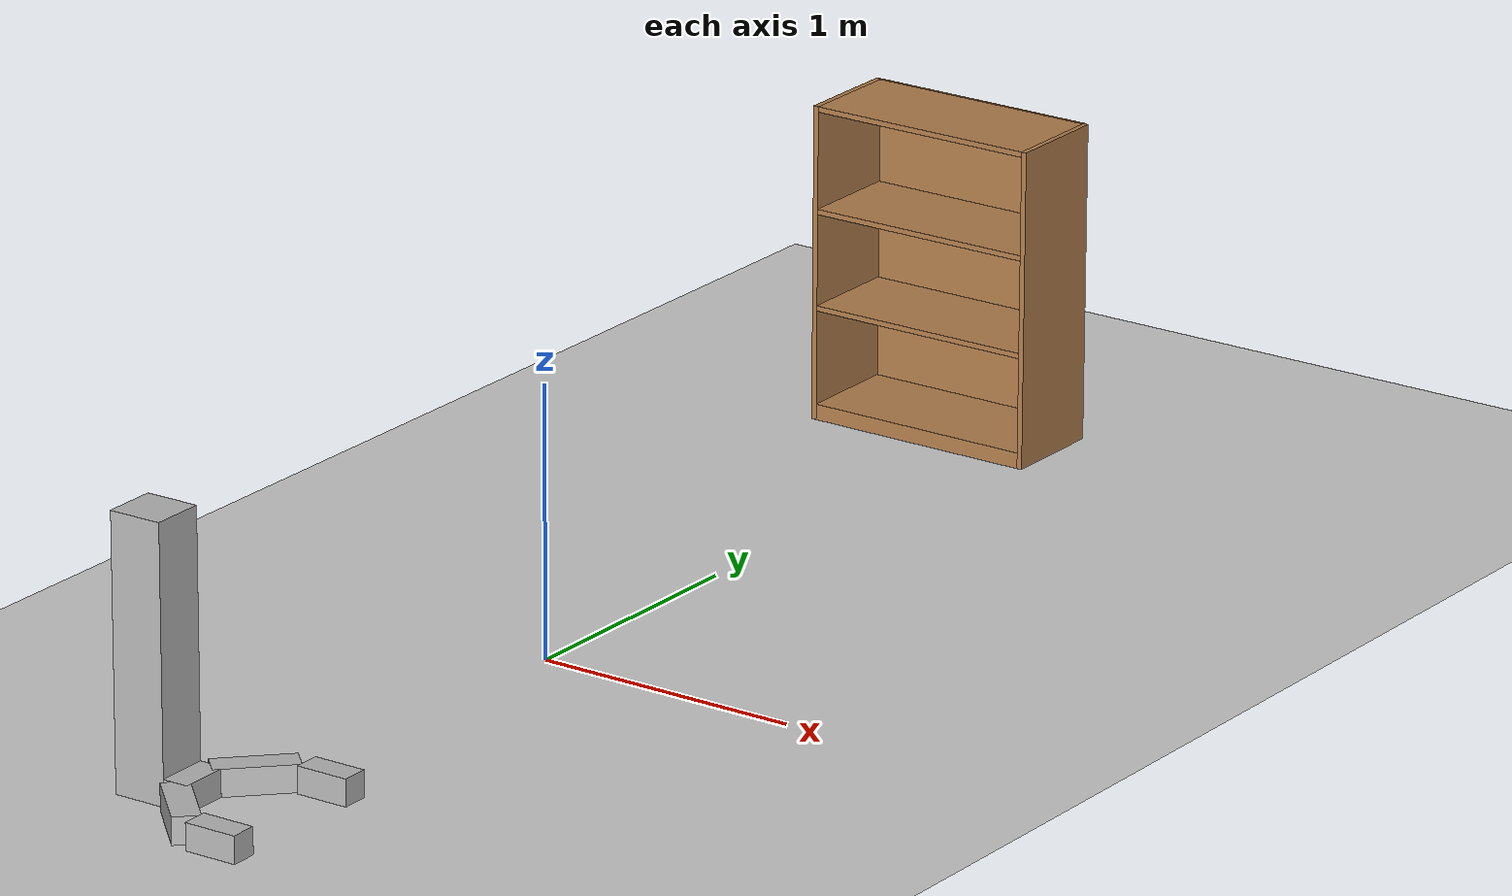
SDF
<sdf version="1.7">
 <world name="default">
  <light name="sun" type="directional">
   <pose>0 0 10 0 -0 0</pose>
   <diffuse>0.8 0.8 0.8 1</diffuse>
   <specular>0.2 0.2 0.2 1</specular>
   <attenuation>
    <range>1000</range>
    <constant>0.9</constant>
    <linear>0.01</linear>
    <quadratic>0.001</quadratic>
   </attenuation>
   <direction>-0.5 0.1 -0.9</direction>
   <spot><inner_angle>0</inner_angle><outer_angle>0</outer_angle><falloff>0</falloff></spot>
  </light>
  <model name="ground_plane">
   <static>1</static>
   <link name="link">
    <collision name="collision">
     <geometry><plane><normal>0 0 1</normal><size>100 100</size></plane></geometry>
     <surface>
      <contact><collide_bitmask>65535</collide_bitmask></contact>
      <friction><ode><mu>100</mu><mu2>50</mu2></ode></friction>
     </surface>
    </collision>
    <visual name="visual">
     <cast_shadows>0</cast_shadows>
     <geometry><plane><normal>0 0 1</normal><size>100 100</size></plane></geometry>
     <material>
      <script><uri>file://media/materials/scripts/gazebo.material</uri><name>Gazebo/Grey</name></script>
     </material>
    </visual>
   </link>
  </model>
  <gravity>0 0 -9.8</gravity>
  <magnetic_field>6e-06 2.3e-05 -4.2e-05</magnetic_field>
  <atmosphere type="adiabatic"/>
  <physics type="ode">
   <max_step_size>0.001</max_step_size>
   <real_time_factor>1</real_time_factor>
   <real_time_update_rate>1000</real_time_update_rate>
  </physics>
  <scene><ambient>0.4 0.4 0.4 1</ambient><background>0.7 0.7 0.7 1</background><shadows>1</shadows></scene>
  <audio><device>default</device></audio>
  <spherical_coordinates>
   <surface_model>EARTH_WGS84</surface_model>
   <latitude_deg>0</latitude_deg>
   <longitude_deg>0</longitude_deg>
   <elevation>0</elevation>
   <heading_deg>0</heading_deg>
  </spherical_coordinates>
  <model name="simple_gripper">
   <link name="riser">
    <pose>-0.15 0 0.5 0 -0 0</pose>
    <inertial>
     <pose>0 0 -0.5 0 -0 0</pose>
     <inertia><ixx>0.01</ixx><ixy>0</ixy><ixz>0</ixz><iyy>0.01</iyy><iyz>0</iyz><izz>0.01</izz></inertia>
     <mass>10</mass>
    </inertial>
    <collision name="collision"><geometry><box><size>0.2 0.2 1</size></box></geometry></collision>
    <visual name="visual">
     <geometry><box><size>0.2 0.2 1</size></box></geometry>
     <material><script><uri>__default__</uri><name>__default__</name></script></material>
    </visual>
   </link>
   <link name="palm">
    <pose>0 0 0.05 0 -0 0</pose>
    <inertial>
     <inertia><ixx>0.01</ixx><ixy>0</ixy><ixz>0</ixz><iyy>0.01</iyy><iyz>0</iyz><izz>0.01</izz></inertia>
     <mass>0.5</mass>
    </inertial>
    <collision name="collision"><geometry><box><size>0.1 0.2 0.1</size></box></geometry></collision>
    <visual name="visual">
     <geometry><box><size>0.1 0.2 0.1</size></box></geometry>
     <material><script><uri>__default__</uri><name>__default__</name></script></material>
    </visual>
   </link>
   <link name="left_finger">
    <pose>0.1 0.2 0.05 0 0 -0.78539</pose>
    <inertial>
     <inertia><ixx>0.01</ixx><ixy>0</ixy><ixz>0</ixz><iyy>0.01</iyy><iyz>0</iyz><izz>0.01</izz></inertia>
     <mass>0.1</mass>
    </inertial>
    <collision name="collision"><geometry><box><size>0.1 0.3 0.1</size></box></geometry></collision>
    <visual name="visual">
     <geometry><box><size>0.1 0.3 0.1</size></box></geometry>
     <material><script><uri>__default__</uri><name>__default__</name></script></material>
    </visual>
   </link>
   <link name="left_finger_tip">
    <pose>0.336 0.3 0.05 0 -0 1.5707</pose>
    <inertial>
     <inertia><ixx>0.01</ixx><ixy>0</ixy><ixz>0</ixz><iyy>0.01</iyy><iyz>0</iyz><izz>0.01</izz></inertia>
     <mass>0.1</mass>
    </inertial>
    <collision name="collision"><geometry><box><size>0.1 0.2 0.1</size></box></geometry></collision>
    <visual name="visual">
     <geometry><box><size>0.1 0.2 0.1</size></box></geometry>
     <material><script><uri>__default__</uri><name>__default__</name></script></material>
    </visual>
   </link>
   <link name="right_finger">
    <pose>0.1 -0.2 0.05 0 -0 0.78539</pose>
    <inertial>
     <inertia><ixx>0.01</ixx><ixy>0</ixy><ixz>0</ixz><iyy>0.01</iyy><iyz>0</iyz><izz>0.01</izz></inertia>
     <mass>0.1</mass>
    </inertial>
    <collision name="collision"><geometry><box><size>0.1 0.3 0.1</size></box></geometry></collision>
    <visual name="visual">
     <geometry><box><size>0.1 0.3 0.1</size></box></geometry>
     <material><script><uri>__default__</uri><name>__default__</name></script></material>
    </visual>
   </link>
   <link name="right_finger_tip">
    <pose>0.336 -0.3 0.05 0 -0 1.5707</pose>
    <inertial>
     <inertia><ixx>0.01</ixx><ixy>0</ixy><ixz>0</ixz><iyy>0.01</iyy><iyz>0</iyz><izz>0.01</izz></inertia>
     <mass>0.1</mass>
    </inertial>
    <collision name="collision"><geometry><box><size>0.1 0.2 0.1</size></box></geometry></collision>
    <visual name="visual">
     <geometry><box><size>0.1 0.2 0.1</size></box></geometry>
     <material><script><uri>__default__</uri><name>__default__</name></script></material>
    </visual>
   </link>
   <joint name="palm_left_finger" type="revolute">
    <pose>0 -0.15 0 0 -0 0</pose>
    <child>left_finger</child>
    <parent>palm</parent>
    <axis>
     <limit><lower>-0.4</lower><upper>0.4</upper></limit>
     <xyz expressed_in="__model__">0 0 1</xyz>
     <dynamics><spring_reference>0</spring_reference><spring_stiffness>0</spring_stiffness></dynamics>
    </axis>
   </joint>
   <joint name="left_finger_tip" type="revolute">
    <pose>0 0.1 0 0 -0 0</pose>
    <child>left_finger_tip</child>
    <parent>left_finger</parent>
    <axis>
     <limit><lower>-0.4</lower><upper>0.4</upper></limit>
     <xyz expressed_in="__model__">0 0 1</xyz>
     <dynamics><spring_reference>0</spring_reference><spring_stiffness>0</spring_stiffness></dynamics>
    </axis>
   </joint>
   <joint name="palm_right_finger" type="revolute">
    <pose>0 0.15 0 0 -0 0</pose>
    <child>right_finger</child>
    <parent>palm</parent>
    <axis>
     <limit><lower>-0.4</lower><upper>0.4</upper></limit>
     <xyz expressed_in="__model__">0 0 1</xyz>
     <dynamics><spring_reference>0</spring_reference><spring_stiffness>0</spring_stiffness></dynamics>
    </axis>
   </joint>
   <joint name="right_finger_tip" type="revolute">
    <pose>0 0.1 0 0 -0 0</pose>
    <child>right_finger_tip</child>
    <parent>right_finger</parent>
    <axis>
     <limit><lower>-0.4</lower><upper>0.4</upper></limit>
     <xyz expressed_in="__model__">0 0 1</xyz>
     <dynamics><spring_reference>0</spring_reference><spring_stiffness>0</spring_stiffness></dynamics>
    </axis>
   </joint>
   <joint name="palm_riser" type="prismatic">
    <child>palm</child>
    <parent>riser</parent>
    <axis>
     <limit><lower>0</lower><upper>0.9</upper></limit>
     <xyz expressed_in="__model__">0 0 1</xyz>
     <dynamics><spring_reference>0</spring_reference><spring_stiffness>0</spring_stiffness></dynamics>
    </axis>
   </joint>
   <static>0</static>
   <pose>-0.184798 -1.70414 -4e-06 -4.2e-05 -0 0.00798</pose>
  </model>
  <model name="bookshelf">
   <static>1</static>
   <link name="link">
    <inertial><mass>1</mass></inertial>
    <collision name="back">
     <pose>0 0.005 0.6 0 -0 0</pose>
     <geometry><box><size>0.9 0.01 1.2</size></box></geometry>
    </collision>
    <visual name="visual1">
     <pose>0 0.005 0.6 0 -0 0</pose>
     <geometry><box><size>0.9 0.01 1.2</size></box></geometry>
     <material>
      <script><uri>file://media/materials/scripts/gazebo.material</uri><name>Gazebo/Wood</name></script>
     </material>
    </visual>
    <collision name="left_side">
     <pose>0.45 -0.195 0.6 0 -0 0</pose>
     <geometry><box><size>0.02 0.4 1.2</size></box></geometry>
    </collision>
    <visual name="visual2">
     <pose>0.45 -0.195 0.6 0 -0 0</pose>
     <geometry><box><size>0.02 0.4 1.2</size></box></geometry>
     <material>
      <script><uri>file://media/materials/scripts/gazebo.material</uri><name>Gazebo/Wood</name></script>
     </material>
    </visual>
    <collision name="right_side">
     <pose>-0.45 -0.195 0.6 0 -0 0</pose>
     <geometry><box><size>0.02 0.4 1.2</size></box></geometry>
    </collision>
    <visual name="visual3">
     <pose>-0.45 -0.195 0.6 0 -0 0</pose>
     <geometry><box><size>0.02 0.4 1.2</size></box></geometry>
     <material>
      <script><uri>file://media/materials/scripts/gazebo.material</uri><name>Gazebo/Wood</name></script>
     </material>
    </visual>
    <collision name="bottom">
     <pose>0 -0.195 0.03 0 -0 0</pose>
     <geometry><box><size>0.88 0.4 0.06</size></box></geometry>
    </collision>
    <visual name="visual4">
     <pose>0 -0.195 0.03 0 -0 0</pose>
     <geometry><box><size>0.88 0.4 0.06</size></box></geometry>
     <material>
      <script><uri>file://media/materials/scripts/gazebo.material</uri><name>Gazebo/Wood</name></script>
     </material>
    </visual>
    <collision name="top">
     <pose>0 -0.195 1.19 0 -0 0</pose>
     <geometry><box><size>0.88 0.4 0.02</size></box></geometry>
    </collision>
    <visual name="visual5">
     <pose>0 -0.195 1.19 0 -0 0</pose>
     <geometry><box><size>0.88 0.4 0.02</size></box></geometry>
     <material>
      <script><uri>file://media/materials/scripts/gazebo.material</uri><name>Gazebo/Wood</name></script>
     </material>
    </visual>
    <collision name="low_shelf">
     <pose>0 -0.195 0.43 0 -0 0</pose>
     <geometry><box><size>0.88 0.4 0.02</size></box></geometry>
    </collision>
    <visual name="visual6">
     <pose>0 -0.195 0.43 0 -0 0</pose>
     <geometry><box><size>0.88 0.4 0.02</size></box></geometry>
     <material>
      <script><uri>file://media/materials/scripts/gazebo.material</uri><name>Gazebo/Wood</name></script>
     </material>
    </visual>
    <collision name="high_shelf">
     <pose>0 -0.195 0.8 0 -0 0</pose>
     <geometry><box><size>0.88 0.4 0.02</size></box></geometry>
    </collision>
    <visual name="visual7">
     <pose>0 -0.195 0.8 0 -0 0</pose>
     <geometry><box><size>0.88 0.4 0.02</size></box></geometry>
     <material>
      <script><uri>file://media/materials/scripts/gazebo.material</uri><name>Gazebo/Wood</name></script>
     </material>
    </visual>
   </link>
   <pose>-0.184555 2.90509 0 0 -0 0</pose>
  </model>
 </world>
</sdf>
